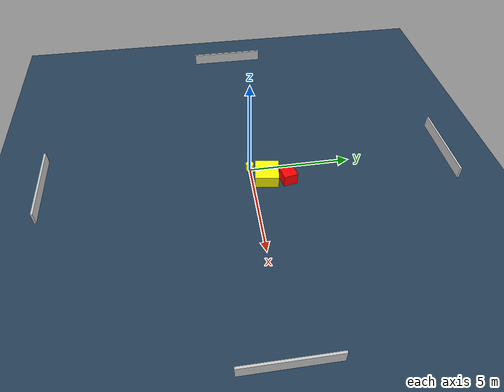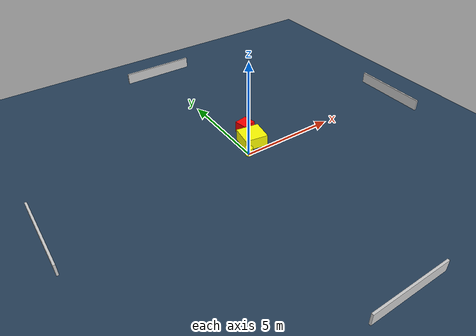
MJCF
<?xml version="1.0" ?>
<mujoco model="generated_environment">
  <option timestep="0.01" integrator="RK4" cone="elliptic"/>
  <default>
    <geom density="1"/>
  </default>
  <asset>
    <texture builtin="gradient" height="3072" name="skybox" rgb1="0.3 0.5 0.7" rgb2="0 0 0" type="skybox" width="512"/>
    <texture builtin="checker" height="300" name="groundplane" rgb1="0.2 0.3 0.4" rgb2="0.1 0.2 0.3" type="2d" width="300"/>
    <material name="groundplane" reflectance="0.2" texrepeat="5 5" texture="groundplane"/>
  </asset>
  <worldbody>
    <light dir="0 0 -1" directional="true" pos="0 0 1.5"/>
    <geom condim="3" friction="0.5 0.005 0.001" material="groundplane" name="floor" pos="0 0 0" size="0 0 0.05" type="plane"/>
    <body name="walls">
      <geom name="wall_1" condim="4" pos="-10.0 0.0 0.3" rgba="0.800000011920929 0.800000011920929 0.800000011920929 1.0" size="0.05 2.0 0.3" type="box"/>
      <geom name="wall_2" condim="4" pos="10.0 0.0 0.3" rgba="0.800000011920929 0.800000011920929 0.800000011920929 1.0" size="0.05 2.0 0.3" type="box"/>
      <geom name="wall_3" condim="4" pos="0.0 -10.0 0.3" rgba="0.800000011920929 0.800000011920929 0.800000011920929 1.0" size="2.0 0.05 0.3" type="box"/>
      <geom name="wall_4" condim="4" pos="0.0 10.0 0.3" rgba="0.800000011920929 0.800000011920929 0.800000011920929 1.0" size="2.0 0.05 0.3" type="box"/>
    </body>
    <body name="robot">
      <joint name="joint_x" type="slide" pos="0 0 0" axis="1 0 0"/>
      <joint name="joint_y" type="slide" pos="0 0 0" axis="0 1 0"/>
      <geom name="robot" type="cylinder" pos="0.0 0.0 0.2" size="0.2 0.2 0.0" mass="5.0" friction="1.0 0.005 0.0001" condim="4" rgba="1.0 1.0 0.0 1.0"/>
    </body>
    <body name="obstacle_1_movable">
      <geom name="obstacle_1_movable" condim="4" pos="0.6915777659947365 0.7350760107687708 0.3" euler="0 0 170.97426707350772" friction="0.0 0.005 0.001" rgba="1.0 1.0 0.0 1.0" size="0.6056490362355116 0.5652602531254032 0.3" type="box" mass="0.1"/>
      <joint type="free"/>
    </body>
    <body name="obstacle_2_static">
      <geom name="obstacle_2_static" condim="4" pos="0.9585487646134143 1.731953337171298 0.3" euler="0 0 100.84534051537368" friction="0.0 0.005 0.001" rgba="1.0 0.0 0.0 1.0" size="0.34328862824947304 0.3519082929809475 0.3" type="box"/>
    </body>
  </worldbody>
  <actuator>
    <motor name="actuator_x" joint="joint_x" gear="1" ctrlrange="-1 1"/>
    <motor name="actuator_y" joint="joint_y" gear="1" ctrlrange="-1 1"/>
  </actuator>
</mujoco>
